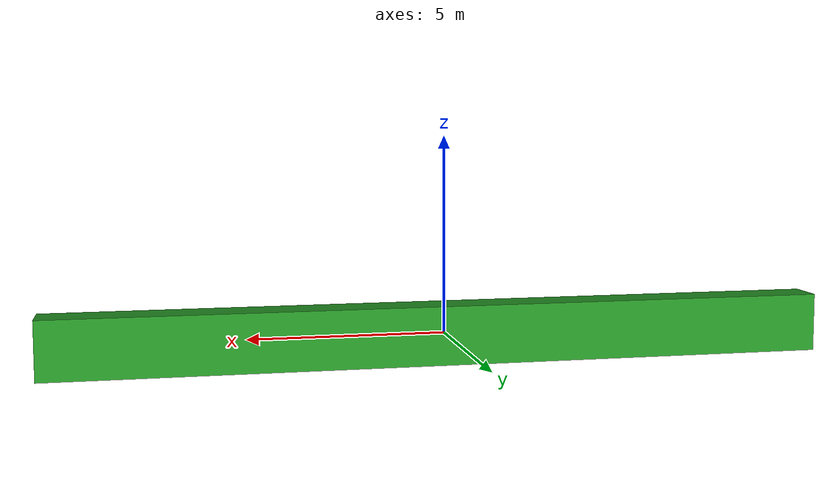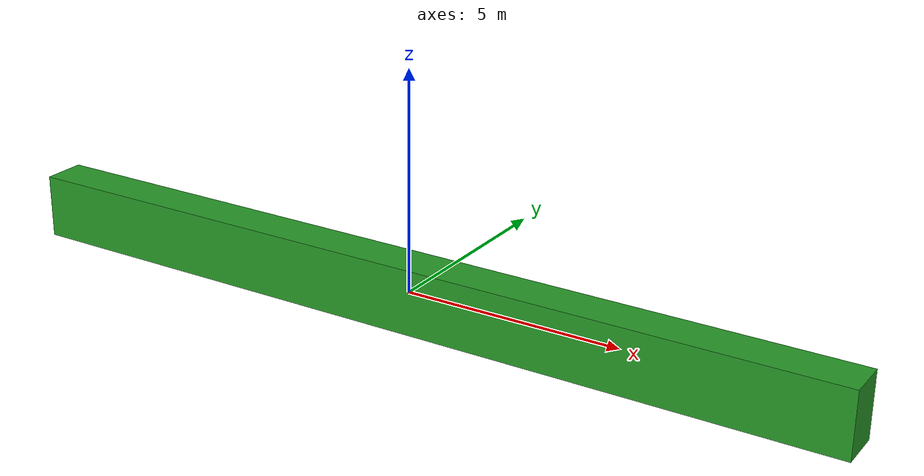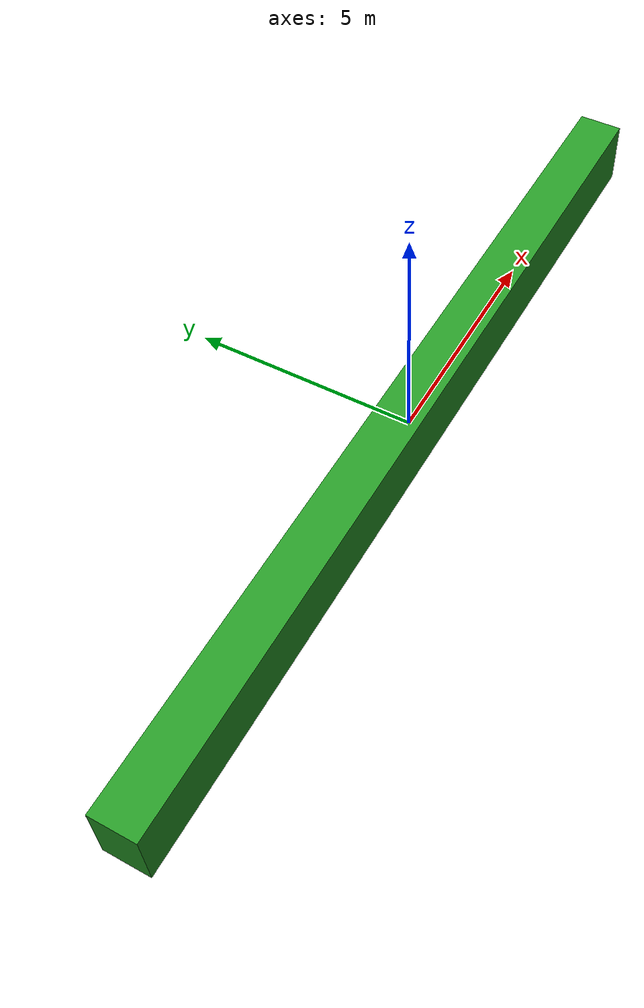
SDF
<?xml version="1.0"?>
<sdf version="1.6">
  <model name="greenhouse_row">
    <static>true</static>
    <link name="row_link">
      <collision name="row_collision">
        <geometry>
          <box>
            <size>20.0 1.0 1.5</size>
          </box>
        </geometry>
      </collision>
      <visual name="row_visual">
        <geometry>
          <box>
            <size>20.0 1.0 1.5</size>
          </box>
        </geometry>
        <material>
          <ambient>0.1 0.5 0.1 1</ambient>
          <diffuse>0.15 0.6 0.15 1</diffuse>
          <specular>0.05 0.1 0.05 1</specular>
        </material>
      </visual>
    </link>
  </model>
</sdf>
